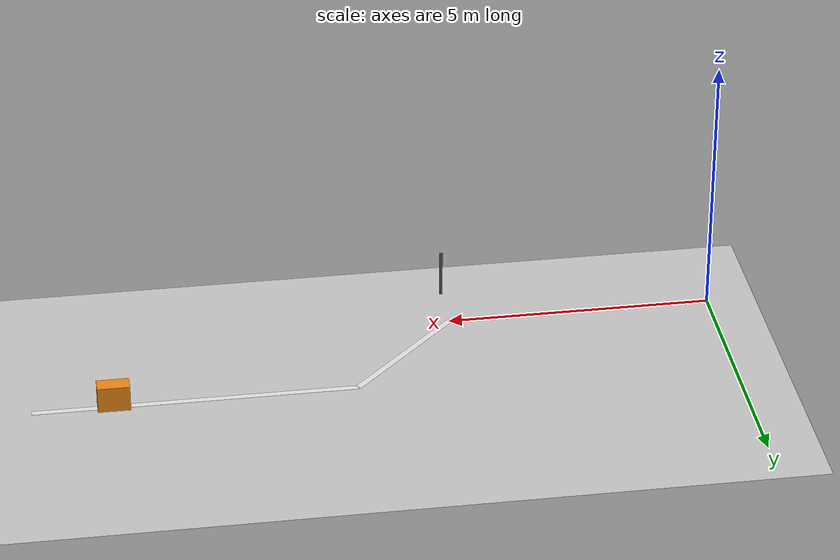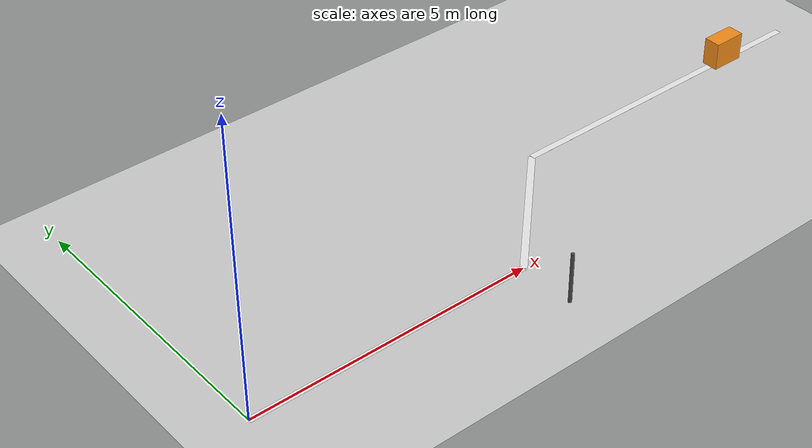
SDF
<sdf version="1.6">
 <world name="overcast_street">
  <light type="directional" name="sun">
   <pose>0 0 10 0 0 0</pose>
   <diffuse>0.55 0.55 0.62 1</diffuse>
   <specular>0.08 0.08 0.08 1</specular>
   <attenuation>
    <range>1000</range>
    <constant>0.9</constant>
    <linear>0.01</linear>
    <quadratic>0.001</quadratic>
   </attenuation>
   <direction>-0.1 -0.3 -0.95</direction>
  </light>
  <model name="ground_plane">
   <static>true</static>
   <link name="link">
    <collision name="collision">
     <geometry><plane><normal>0 0 1</normal><size>100 100</size></plane></geometry>
     <surface><friction><ode><mu>100</mu><mu2>50</mu2></ode></friction></surface>
    </collision>
    <visual name="visual">
     <cast_shadows>false</cast_shadows>
     <geometry><plane><normal>0 0 1</normal><size>100 100</size></plane></geometry>
     <material>
      <script><uri>file://media/materials/scripts/gazebo.material</uri><name>Gazebo/Grey</name></script>
     </material>
    </visual>
   </link>
  </model>
  <model name="lane_segment_1">
   <static>true</static>
   <link name="link">
    <visual name="visual">
     <geometry><box><size>5.0 0.12 0.001</size></box></geometry>
     <material>
      <script><uri>file://media/materials/scripts/gazebo.material</uri><name>Gazebo/White</name></script>
     </material>
    </visual>
   </link>
   <pose>2.5 0.0 0.0005 0 0 0</pose>
  </model>
  <model name="lane_segment_2">
   <static>true</static>
   <link name="link">
    <visual name="visual">
     <geometry><box><size>2.83 0.12 0.001</size></box></geometry>
     <material>
      <script><uri>file://media/materials/scripts/gazebo.material</uri><name>Gazebo/White</name></script>
     </material>
    </visual>
   </link>
   <pose>6.0 1.0 0.0005 0 0 0.7854</pose>
  </model>
  <model name="lane_segment_3">
   <static>true</static>
   <link name="link">
    <visual name="visual">
     <geometry><box><size>6.0 0.12 0.001</size></box></geometry>
     <material>
      <script><uri>file://media/materials/scripts/gazebo.material</uri><name>Gazebo/White</name></script>
     </material>
    </visual>
   </link>
   <pose>10.0 2.0 0.0005 0 0 0</pose>
  </model>
  <model name="traffic_light_pole">
   <static>true</static>
   <link name="link">
    <collision name="collision">
     <geometry><cylinder><radius>0.03</radius><length>0.9</length></cylinder></geometry>
    </collision>
    <visual name="visual">
     <geometry><cylinder><radius>0.03</radius><length>0.9</length></cylinder></geometry>
     <material>
      <script><uri>file://media/materials/scripts/gazebo.material</uri><name>Gazebo/DarkGrey</name></script>
     </material>
    </visual>
   </link>
   <pose>5.0 -1.0 0.45 0 0 0</pose>
  </model>
  <model name="obstacle_box">
   <static>true</static>
   <link name="link">
    <collision name="collision"><geometry><box><size>0.6 0.3 0.5</size></box></geometry></collision>
    <visual name="visual">
     <geometry><box><size>0.6 0.3 0.5</size></box></geometry>
     <material>
      <script><uri>file://media/materials/scripts/gazebo.material</uri><name>Gazebo/Orange</name></script>
     </material>
    </visual>
   </link>
   <pose>11.5 2.0 0.25 0 0 0</pose>
  </model>
 </world>
</sdf>
